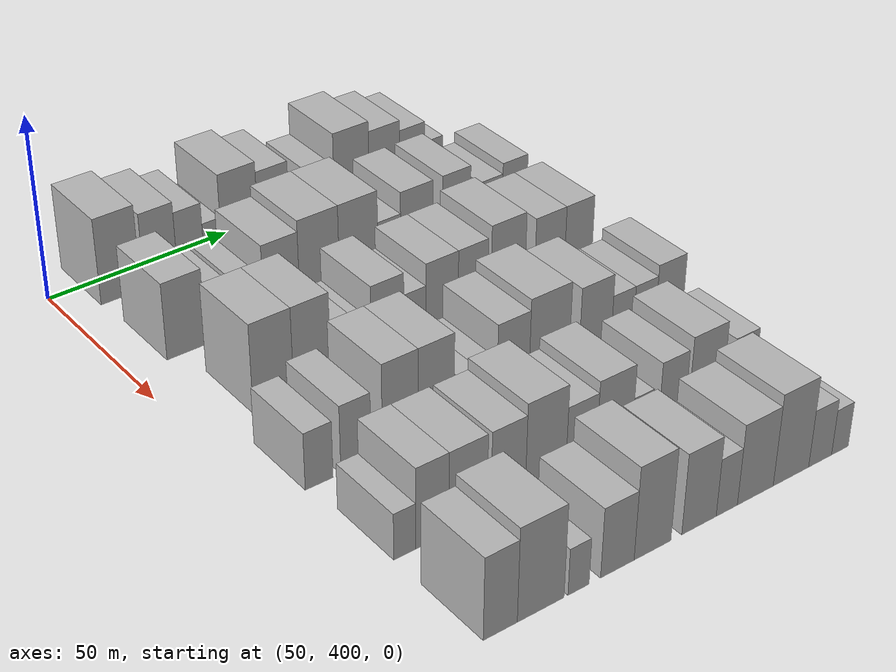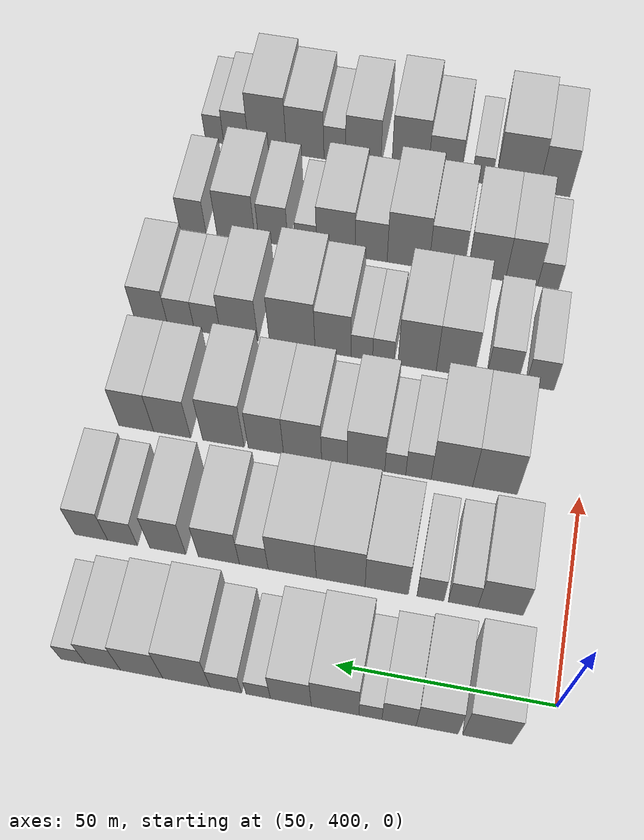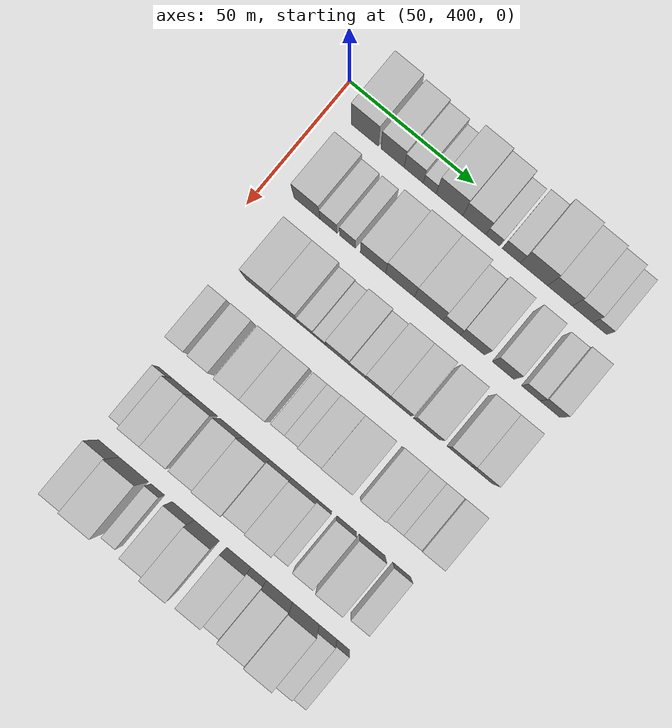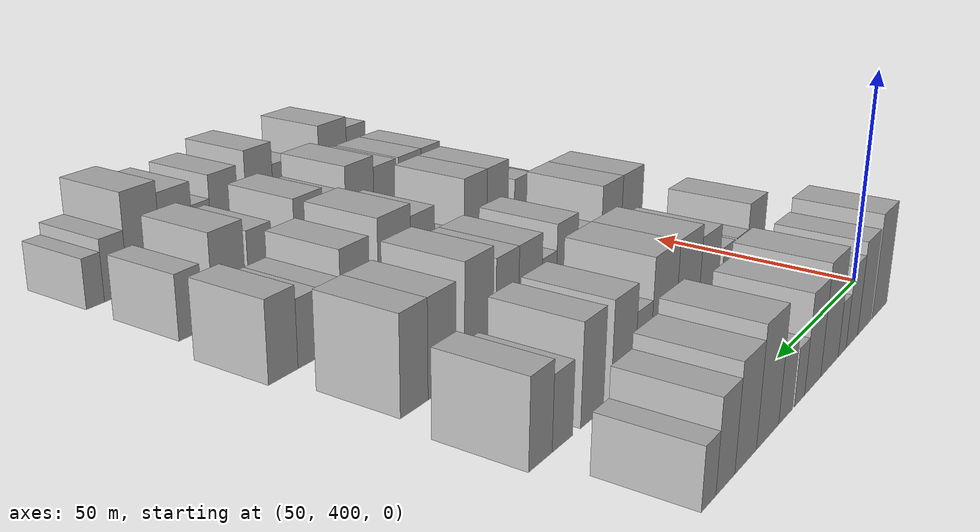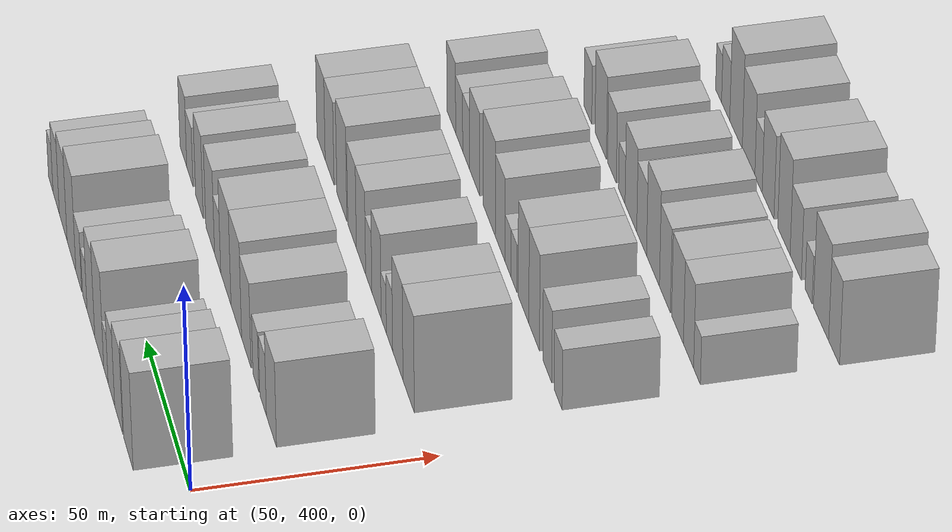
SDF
<sdf version="1.6">
 <world name="default">
  <model name="building_93">
   <static>1</static>
   <pose>50.0000 414.2516 0 0.000000 0.000000 0.000000</pose>
   <link name="link">
    <pose>0 0 12.00 0 0 0</pose>
    <collision name="collision"><geometry><box><size>20.0000 10.9364 24.0000</size></box></geometry></collision>
    <visual name="visual">
     <cast_shadows>0</cast_shadows>
     <geometry><box><size>20.0000 10.9364 24.0000</size></box></geometry>
     <material>
      <script>
       <uri>model://HANNAS_wall/materials/scripts</uri>
       <uri>model://HANNAS_wall/materials/textures</uri>
       <name>vrc/HANNAS_wall</name>
      </script>
     </material>
    </visual>
   </link>
  </model>
  <model name="building_94">
   <static>1</static>
   <pose>50.0000 425.4034 0 0.000000 0.000000 0.000000</pose>
   <link name="link">
    <pose>0 0 10.50 0 0 0</pose>
    <collision name="collision"><geometry><box><size>20.0000 9.3673 21.0000</size></box></geometry></collision>
    <visual name="visual">
     <cast_shadows>0</cast_shadows>
     <geometry><box><size>20.0000 9.3673 21.0000</size></box></geometry>
     <material>
      <script>
       <uri>model://HANNAS_wall/materials/scripts</uri>
       <uri>model://HANNAS_wall/materials/textures</uri>
       <name>vrc/HANNAS_wall</name>
      </script>
     </material>
    </visual>
   </link>
  </model>
  <model name="building_95">
   <static>1</static>
   <pose>50.0000 433.9190 0 0.000000 0.000000 0.000000</pose>
   <link name="link">
    <pose>0 0 9.00 0 0 0</pose>
    <collision name="collision"><geometry><box><size>20.0000 7.6639 18.0000</size></box></geometry></collision>
    <visual name="visual">
     <cast_shadows>0</cast_shadows>
     <geometry><box><size>20.0000 7.6639 18.0000</size></box></geometry>
     <material>
      <script>
       <uri>model://HANNAS_wall/materials/scripts</uri>
       <uri>model://HANNAS_wall/materials/textures</uri>
       <name>vrc/HANNAS_wall</name>
      </script>
     </material>
    </visual>
   </link>
  </model>
  <model name="building_96">
   <static>1</static>
   <pose>50.0000 440.3272 0 0.000000 0.000000 0.000000</pose>
   <link name="link">
    <pose>0 0 6.00 0 0 0</pose>
    <collision name="collision"><geometry><box><size>20.0000 5.1525 12.0000</size></box></geometry></collision>
    <visual name="visual">
     <cast_shadows>0</cast_shadows>
     <geometry><box><size>20.0000 5.1525 12.0000</size></box></geometry>
     <material>
      <script>
       <uri>model://HANNAS_wall/materials/scripts</uri>
       <uri>model://HANNAS_wall/materials/textures</uri>
       <name>vrc/HANNAS_wall</name>
      </script>
     </material>
    </visual>
   </link>
  </model>
  <model name="building_97">
   <static>1</static>
   <pose>50.0000 448.2680 0 0.000000 0.000000 0.000000</pose>
   <link name="link">
    <pose>0 0 12.00 0 0 0</pose>
    <collision name="collision"><geometry><box><size>20.0000 10.7291 24.0000</size></box></geometry></collision>
    <visual name="visual">
     <cast_shadows>0</cast_shadows>
     <geometry><box><size>20.0000 10.7291 24.0000</size></box></geometry>
     <material>
      <script>
       <uri>model://HANNAS_wall/materials/scripts</uri>
       <uri>model://HANNAS_wall/materials/textures</uri>
       <name>vrc/HANNAS_wall</name>
      </script>
     </material>
    </visual>
   </link>
  </model>
  <model name="building_98">
   <static>1</static>
   <pose>50.0000 458.2632 0 0.000000 0.000000 0.000000</pose>
   <link name="link">
    <pose>0 0 10.50 0 0 0</pose>
    <collision name="collision"><geometry><box><size>20.0000 9.2614 21.0000</size></box></geometry></collision>
    <visual name="visual">
     <cast_shadows>0</cast_shadows>
     <geometry><box><size>20.0000 9.2614 21.0000</size></box></geometry>
     <material>
      <script>
       <uri>model://HANNAS_wall/materials/scripts</uri>
       <uri>model://HANNAS_wall/materials/textures</uri>
       <name>vrc/HANNAS_wall</name>
      </script>
     </material>
    </visual>
   </link>
  </model>
  <model name="building_99">
   <static>1</static>
   <pose>50.0000 465.6730 0 0.000000 0.000000 0.000000</pose>
   <link name="link">
    <pose>0 0 6.00 0 0 0</pose>
    <collision name="collision"><geometry><box><size>20.0000 5.5582 12.0000</size></box></geometry></collision>
    <visual name="visual">
     <cast_shadows>0</cast_shadows>
     <geometry><box><size>20.0000 5.5582 12.0000</size></box></geometry>
     <material>
      <script>
       <uri>model://HANNAS_wall/materials/scripts</uri>
       <uri>model://HANNAS_wall/materials/textures</uri>
       <name>vrc/HANNAS_wall</name>
      </script>
     </material>
    </visual>
   </link>
  </model>
  <model name="building_100">
   <static>1</static>
   <pose>50.0000 473.0688 0 0.000000 0.000000 0.000000</pose>
   <link name="link">
    <pose>0 0 7.50 0 0 0</pose>
    <collision name="collision"><geometry><box><size>20.0000 7.2334 15.0000</size></box></geometry></collision>
    <visual name="visual">
     <cast_shadows>0</cast_shadows>
     <geometry><box><size>20.0000 7.2334 15.0000</size></box></geometry>
     <material>
      <script>
       <uri>model://HANNAS_wall/materials/scripts</uri>
       <uri>model://HANNAS_wall/materials/textures</uri>
       <name>vrc/HANNAS_wall</name>
      </script>
     </material>
    </visual>
   </link>
  </model>
  <model name="building_101">
   <static>1</static>
   <pose>50.0000 482.1366 0 0.000000 0.000000 0.000000</pose>
   <link name="link">
    <pose>0 0 12.00 0 0 0</pose>
    <collision name="collision"><geometry><box><size>20.0000 10.9023 24.0000</size></box></geometry></collision>
    <visual name="visual">
     <cast_shadows>0</cast_shadows>
     <geometry><box><size>20.0000 10.9023 24.0000</size></box></geometry>
     <material>
      <script>
       <uri>model://HANNAS_wall/materials/scripts</uri>
       <uri>model://HANNAS_wall/materials/textures</uri>
       <name>vrc/HANNAS_wall</name>
      </script>
     </material>
    </visual>
   </link>
  </model>
  <model name="building_102">
   <static>1</static>
   <pose>50.0000 492.4857 0 0.000000 0.000000 0.000000</pose>
   <link name="link">
    <pose>0 0 10.50 0 0 0</pose>
    <collision name="collision"><geometry><box><size>20.0000 9.7958 21.0000</size></box></geometry></collision>
    <visual name="visual">
     <cast_shadows>0</cast_shadows>
     <geometry><box><size>20.0000 9.7958 21.0000</size></box></geometry>
     <material>
      <script>
       <uri>model://HANNAS_wall/materials/scripts</uri>
       <uri>model://HANNAS_wall/materials/textures</uri>
       <name>vrc/HANNAS_wall</name>
      </script>
     </material>
    </visual>
   </link>
  </model>
  <model name="building_103">
   <static>1</static>
   <pose>50.0000 501.4097 0 0.000000 0.000000 0.000000</pose>
   <link name="link">
    <pose>0 0 9.00 0 0 0</pose>
    <collision name="collision"><geometry><box><size>20.0000 8.0523 18.0000</size></box></geometry></collision>
    <visual name="visual">
     <cast_shadows>0</cast_shadows>
     <geometry><box><size>20.0000 8.0523 18.0000</size></box></geometry>
     <material>
      <script>
       <uri>model://HANNAS_wall/materials/scripts</uri>
       <uri>model://HANNAS_wall/materials/textures</uri>
       <name>vrc/HANNAS_wall</name>
      </script>
     </material>
    </visual>
   </link>
  </model>
  <model name="building_104">
   <static>1</static>
   <pose>50.0000 508.3686 0 0.000000 0.000000 0.000000</pose>
   <link name="link">
    <pose>0 0 6.00 0 0 0</pose>
    <collision name="collision"><geometry><box><size>20.0000 5.8654 12.0000</size></box></geometry></collision>
    <visual name="visual">
     <cast_shadows>0</cast_shadows>
     <geometry><box><size>20.0000 5.8654 12.0000</size></box></geometry>
     <material>
      <script>
       <uri>model://HANNAS_wall/materials/scripts</uri>
       <uri>model://HANNAS_wall/materials/textures</uri>
       <name>vrc/HANNAS_wall</name>
      </script>
     </material>
    </visual>
   </link>
  </model>
  <model name="building_212">
   <static>1</static>
   <pose>79.0000 415.1265 0 0.000000 0.000000 0.000000</pose>
   <link name="link">
    <pose>0 0 10.50 0 0 0</pose>
    <collision name="collision"><geometry><box><size>20.0000 10.4873 21.0000</size></box></geometry></collision>
    <visual name="visual">
     <cast_shadows>0</cast_shadows>
     <geometry><box><size>20.0000 10.4873 21.0000</size></box></geometry>
     <material>
      <script>
       <uri>model://HANNAS_wall/materials/scripts</uri>
       <uri>model://HANNAS_wall/materials/textures</uri>
       <name>vrc/HANNAS_wall</name>
      </script>
     </material>
    </visual>
   </link>
  </model>
  <model name="building_213">
   <static>1</static>
   <pose>79.0000 423.7990 0 0.000000 0.000000 0.000000</pose>
   <link name="link">
    <pose>0 0 7.50 0 0 0</pose>
    <collision name="collision"><geometry><box><size>20.0000 6.8576 15.0000</size></box></geometry></collision>
    <visual name="visual">
     <cast_shadows>0</cast_shadows>
     <geometry><box><size>20.0000 6.8576 15.0000</size></box></geometry>
     <material>
      <script>
       <uri>model://HANNAS_wall/materials/scripts</uri>
       <uri>model://HANNAS_wall/materials/textures</uri>
       <name>vrc/HANNAS_wall</name>
      </script>
     </material>
    </visual>
   </link>
  </model>
  <model name="building_214">
   <static>1</static>
   <pose>79.0000 431.3842 0 0.000000 0.000000 0.000000</pose>
   <link name="link">
    <pose>0 0 7.50 0 0 0</pose>
    <collision name="collision"><geometry><box><size>20.0000 6.3128 15.0000</size></box></geometry></collision>
    <visual name="visual">
     <cast_shadows>0</cast_shadows>
     <geometry><box><size>20.0000 6.3128 15.0000</size></box></geometry>
     <material>
      <script>
       <uri>model://HANNAS_wall/materials/scripts</uri>
       <uri>model://HANNAS_wall/materials/textures</uri>
       <name>vrc/HANNAS_wall</name>
      </script>
     </material>
    </visual>
   </link>
  </model>
  <model name="building_215">
   <static>1</static>
   <pose>79.0000 441.6083 0 0.000000 0.000000 0.000000</pose>
   <link name="link">
    <pose>0 0 10.50 0 0 0</pose>
    <collision name="collision"><geometry><box><size>20.0000 10.1354 21.0000</size></box></geometry></collision>
    <visual name="visual">
     <cast_shadows>0</cast_shadows>
     <geometry><box><size>20.0000 10.1354 21.0000</size></box></geometry>
     <material>
      <script>
       <uri>model://HANNAS_wall/materials/scripts</uri>
       <uri>model://HANNAS_wall/materials/textures</uri>
       <name>vrc/HANNAS_wall</name>
      </script>
     </material>
    </visual>
   </link>
  </model>
  <model name="building_216">
   <static>1</static>
   <pose>79.0000 452.4378 0 0.000000 0.000000 0.000000</pose>
   <link name="link">
    <pose>0 0 12.00 0 0 0</pose>
    <collision name="collision"><geometry><box><size>20.0000 11.5237 24.0000</size></box></geometry></collision>
    <visual name="visual">
     <cast_shadows>0</cast_shadows>
     <geometry><box><size>20.0000 11.5237 24.0000</size></box></geometry>
     <material>
      <script>
       <uri>model://HANNAS_wall/materials/scripts</uri>
       <uri>model://HANNAS_wall/materials/textures</uri>
       <name>vrc/HANNAS_wall</name>
      </script>
     </material>
    </visual>
   </link>
  </model>
  <model name="building_217">
   <static>1</static>
   <pose>79.0000 463.9124 0 0.000000 0.000000 0.000000</pose>
   <link name="link">
    <pose>0 0 12.00 0 0 0</pose>
    <collision name="collision"><geometry><box><size>20.0000 11.4254 24.0000</size></box></geometry></collision>
    <visual name="visual">
     <cast_shadows>0</cast_shadows>
     <geometry><box><size>20.0000 11.4254 24.0000</size></box></geometry>
     <material>
      <script>
       <uri>model://HANNAS_wall/materials/scripts</uri>
       <uri>model://HANNAS_wall/materials/textures</uri>
       <name>vrc/HANNAS_wall</name>
      </script>
     </material>
    </visual>
   </link>
  </model>
  <model name="building_218">
   <static>1</static>
   <pose>79.0000 473.0520 0 0.000000 0.000000 0.000000</pose>
   <link name="link">
    <pose>0 0 7.50 0 0 0</pose>
    <collision name="collision"><geometry><box><size>20.0000 6.8539 15.0000</size></box></geometry></collision>
    <visual name="visual">
     <cast_shadows>0</cast_shadows>
     <geometry><box><size>20.0000 6.8539 15.0000</size></box></geometry>
     <material>
      <script>
       <uri>model://HANNAS_wall/materials/scripts</uri>
       <uri>model://HANNAS_wall/materials/textures</uri>
       <name>vrc/HANNAS_wall</name>
      </script>
     </material>
    </visual>
   </link>
  </model>
  <model name="building_219">
   <static>1</static>
   <pose>79.0000 481.3973 0 0.000000 0.000000 0.000000</pose>
   <link name="link">
    <pose>0 0 10.50 0 0 0</pose>
    <collision name="collision"><geometry><box><size>20.0000 9.8367 21.0000</size></box></geometry></collision>
    <visual name="visual">
     <cast_shadows>0</cast_shadows>
     <geometry><box><size>20.0000 9.8367 21.0000</size></box></geometry>
     <material>
      <script>
       <uri>model://HANNAS_wall/materials/scripts</uri>
       <uri>model://HANNAS_wall/materials/textures</uri>
       <name>vrc/HANNAS_wall</name>
      </script>
     </material>
    </visual>
   </link>
  </model>
  <model name="building_220">
   <static>1</static>
   <pose>79.0000 493.6692 0 0.000000 0.000000 0.000000</pose>
   <link name="link">
    <pose>0 0 10.50 0 0 0</pose>
    <collision name="collision"><geometry><box><size>20.0000 8.7072 21.0000</size></box></geometry></collision>
    <visual name="visual">
     <cast_shadows>0</cast_shadows>
     <geometry><box><size>20.0000 8.7072 21.0000</size></box></geometry>
     <material>
      <script>
       <uri>model://HANNAS_wall/materials/scripts</uri>
       <uri>model://HANNAS_wall/materials/textures</uri>
       <name>vrc/HANNAS_wall</name>
      </script>
     </material>
    </visual>
   </link>
  </model>
  <model name="building_221">
   <static>1</static>
   <pose>79.0000 504.6498 0 0.000000 0.000000 0.000000</pose>
   <link name="link">
    <pose>0 0 7.50 0 0 0</pose>
    <collision name="collision"><geometry><box><size>20.0000 7.2540 15.0000</size></box></geometry></collision>
    <visual name="visual">
     <cast_shadows>0</cast_shadows>
     <geometry><box><size>20.0000 7.2540 15.0000</size></box></geometry>
     <material>
      <script>
       <uri>model://HANNAS_wall/materials/scripts</uri>
       <uri>model://HANNAS_wall/materials/textures</uri>
       <name>vrc/HANNAS_wall</name>
      </script>
     </material>
    </visual>
   </link>
  </model>
  <model name="building_222">
   <static>1</static>
   <pose>79.0000 512.2654 0 0.000000 0.000000 0.000000</pose>
   <link name="link">
    <pose>0 0 9.00 0 0 0</pose>
    <collision name="collision"><geometry><box><size>20.0000 7.9772 18.0000</size></box></geometry></collision>
    <visual name="visual">
     <cast_shadows>0</cast_shadows>
     <geometry><box><size>20.0000 7.9772 18.0000</size></box></geometry>
     <material>
      <script>
       <uri>model://HANNAS_wall/materials/scripts</uri>
       <uri>model://HANNAS_wall/materials/textures</uri>
       <name>vrc/HANNAS_wall</name>
      </script>
     </material>
    </visual>
   </link>
  </model>
  <model name="building_333">
   <static>1</static>
   <pose>108.0000 420.2625 0 0.000000 0.000000 0.000000</pose>
   <link name="link">
    <pose>0 0 12.00 0 0 0</pose>
    <collision name="collision"><geometry><box><size>20.0000 10.8270 24.0000</size></box></geometry></collision>
    <visual name="visual">
     <cast_shadows>0</cast_shadows>
     <geometry><box><size>20.0000 10.8270 24.0000</size></box></geometry>
     <material>
      <script>
       <uri>model://HANNAS_wall/materials/scripts</uri>
       <uri>model://HANNAS_wall/materials/textures</uri>
       <name>vrc/HANNAS_wall</name>
      </script>
     </material>
    </visual>
   </link>
  </model>
  <model name="building_334">
   <static>1</static>
   <pose>108.0000 430.7032 0 0.000000 0.000000 0.000000</pose>
   <link name="link">
    <pose>0 0 12.00 0 0 0</pose>
    <collision name="collision"><geometry><box><size>20.0000 10.0544 24.0000</size></box></geometry></collision>
    <visual name="visual">
     <cast_shadows>0</cast_shadows>
     <geometry><box><size>20.0000 10.0544 24.0000</size></box></geometry>
     <material>
      <script>
       <uri>model://HANNAS_wall/materials/scripts</uri>
       <uri>model://HANNAS_wall/materials/textures</uri>
       <name>vrc/HANNAS_wall</name>
      </script>
     </material>
    </visual>
   </link>
  </model>
  <model name="building_335">
   <static>1</static>
   <pose>108.0000 438.8307 0 0.000000 0.000000 0.000000</pose>
   <link name="link">
    <pose>0 0 7.50 0 0 0</pose>
    <collision name="collision"><geometry><box><size>20.0000 6.2006 15.0000</size></box></geometry></collision>
    <visual name="visual">
     <cast_shadows>0</cast_shadows>
     <geometry><box><size>20.0000 6.2006 15.0000</size></box></geometry>
     <material>
      <script>
       <uri>model://HANNAS_wall/materials/scripts</uri>
       <uri>model://HANNAS_wall/materials/textures</uri>
       <name>vrc/HANNAS_wall</name>
      </script>
     </material>
    </visual>
   </link>
  </model>
  <model name="building_336">
   <static>1</static>
   <pose>108.0000 444.4885 0 0.000000 0.000000 0.000000</pose>
   <link name="link">
    <pose>0 0 6.00 0 0 0</pose>
    <collision name="collision"><geometry><box><size>20.0000 5.1149 12.0000</size></box></geometry></collision>
    <visual name="visual">
     <cast_shadows>0</cast_shadows>
     <geometry><box><size>20.0000 5.1149 12.0000</size></box></geometry>
     <material>
      <script>
       <uri>model://HANNAS_wall/materials/scripts</uri>
       <uri>model://HANNAS_wall/materials/textures</uri>
       <name>vrc/HANNAS_wall</name>
      </script>
     </material>
    </visual>
   </link>
  </model>
  <model name="building_337">
   <static>1</static>
   <pose>108.0000 451.6669 0 0.000000 0.000000 0.000000</pose>
   <link name="link">
    <pose>0 0 10.50 0 0 0</pose>
    <collision name="collision"><geometry><box><size>20.0000 9.2420 21.0000</size></box></geometry></collision>
    <visual name="visual">
     <cast_shadows>0</cast_shadows>
     <geometry><box><size>20.0000 9.2420 21.0000</size></box></geometry>
     <material>
      <script>
       <uri>model://HANNAS_wall/materials/scripts</uri>
       <uri>model://HANNAS_wall/materials/textures</uri>
       <name>vrc/HANNAS_wall</name>
      </script>
     </material>
    </visual>
   </link>
  </model>
  <model name="building_338">
   <static>1</static>
   <pose>108.0000 459.4291 0 0.000000 0.000000 0.000000</pose>
   <link name="link">
    <pose>0 0 7.50 0 0 0</pose>
    <collision name="collision"><geometry><box><size>20.0000 6.2824 15.0000</size></box></geometry></collision>
    <visual name="visual">
     <cast_shadows>0</cast_shadows>
     <geometry><box><size>20.0000 6.2824 15.0000</size></box></geometry>
     <material>
      <script>
       <uri>model://HANNAS_wall/materials/scripts</uri>
       <uri>model://HANNAS_wall/materials/textures</uri>
       <name>vrc/HANNAS_wall</name>
      </script>
     </material>
    </visual>
   </link>
  </model>
  <model name="building_339">
   <static>1</static>
   <pose>108.0000 467.2860 0 0.000000 0.000000 0.000000</pose>
   <link name="link">
    <pose>0 0 10.50 0 0 0</pose>
    <collision name="collision"><geometry><box><size>20.0000 9.4314 21.0000</size></box></geometry></collision>
    <visual name="visual">
     <cast_shadows>0</cast_shadows>
     <geometry><box><size>20.0000 9.4314 21.0000</size></box></geometry>
     <material>
      <script>
       <uri>model://HANNAS_wall/materials/scripts</uri>
       <uri>model://HANNAS_wall/materials/textures</uri>
       <name>vrc/HANNAS_wall</name>
      </script>
     </material>
    </visual>
   </link>
  </model>
  <model name="building_340">
   <static>1</static>
   <pose>108.0000 476.3887 0 0.000000 0.000000 0.000000</pose>
   <link name="link">
    <pose>0 0 10.50 0 0 0</pose>
    <collision name="collision"><geometry><box><size>20.0000 8.7740 21.0000</size></box></geometry></collision>
    <visual name="visual">
     <cast_shadows>0</cast_shadows>
     <geometry><box><size>20.0000 8.7740 21.0000</size></box></geometry>
     <material>
      <script>
       <uri>model://HANNAS_wall/materials/scripts</uri>
       <uri>model://HANNAS_wall/materials/textures</uri>
       <name>vrc/HANNAS_wall</name>
      </script>
     </material>
    </visual>
   </link>
  </model>
  <model name="building_341">
   <static>1</static>
   <pose>108.0000 486.9662 0 0.000000 0.000000 0.000000</pose>
   <link name="link">
    <pose>0 0 12.00 0 0 0</pose>
    <collision name="collision"><geometry><box><size>20.0000 10.3810 24.0000</size></box></geometry></collision>
    <visual name="visual">
     <cast_shadows>0</cast_shadows>
     <geometry><box><size>20.0000 10.3810 24.0000</size></box></geometry>
     <material>
      <script>
       <uri>model://HANNAS_wall/materials/scripts</uri>
       <uri>model://HANNAS_wall/materials/textures</uri>
       <name>vrc/HANNAS_wall</name>
      </script>
     </material>
    </visual>
   </link>
  </model>
  <model name="building_342">
   <static>1</static>
   <pose>108.0000 499.8358 0 0.000000 0.000000 0.000000</pose>
   <link name="link">
    <pose>0 0 10.50 0 0 0</pose>
    <collision name="collision"><geometry><box><size>20.0000 9.3582 21.0000</size></box></geometry></collision>
    <visual name="visual">
     <cast_shadows>0</cast_shadows>
     <geometry><box><size>20.0000 9.3582 21.0000</size></box></geometry>
     <material>
      <script>
       <uri>model://HANNAS_wall/materials/scripts</uri>
       <uri>model://HANNAS_wall/materials/textures</uri>
       <name>vrc/HANNAS_wall</name>
      </script>
     </material>
    </visual>
   </link>
  </model>
  <model name="building_343">
   <static>1</static>
   <pose>108.0000 508.9016 0 0.000000 0.000000 0.000000</pose>
   <link name="link">
    <pose>0 0 10.50 0 0 0</pose>
    <collision name="collision"><geometry><box><size>20.0000 8.7733 21.0000</size></box></geometry></collision>
    <visual name="visual">
     <cast_shadows>0</cast_shadows>
     <geometry><box><size>20.0000 8.7733 21.0000</size></box></geometry>
     <material>
      <script>
       <uri>model://HANNAS_wall/materials/scripts</uri>
       <uri>model://HANNAS_wall/materials/textures</uri>
       <name>vrc/HANNAS_wall</name>
      </script>
     </material>
    </visual>
   </link>
  </model>
  <model name="building_450">
   <static>1</static>
   <pose>137.0000 412.8264 0 0.000000 0.000000 0.000000</pose>
   <link name="link">
    <pose>0 0 7.50 0 0 0</pose>
    <collision name="collision"><geometry><box><size>20.0000 7.1175 15.0000</size></box></geometry></collision>
    <visual name="visual">
     <cast_shadows>0</cast_shadows>
     <geometry><box><size>20.0000 7.1175 15.0000</size></box></geometry>
     <material>
      <script>
       <uri>model://HANNAS_wall/materials/scripts</uri>
       <uri>model://HANNAS_wall/materials/textures</uri>
       <name>vrc/HANNAS_wall</name>
      </script>
     </material>
    </visual>
   </link>
  </model>
  <model name="building_451">
   <static>1</static>
   <pose>137.0000 422.3497 0 0.000000 0.000000 0.000000</pose>
   <link name="link">
    <pose>0 0 9.00 0 0 0</pose>
    <collision name="collision"><geometry><box><size>20.0000 7.9292 18.0000</size></box></geometry></collision>
    <visual name="visual">
     <cast_shadows>0</cast_shadows>
     <geometry><box><size>20.0000 7.9292 18.0000</size></box></geometry>
     <material>
      <script>
       <uri>model://HANNAS_wall/materials/scripts</uri>
       <uri>model://HANNAS_wall/materials/textures</uri>
       <name>vrc/HANNAS_wall</name>
      </script>
     </material>
    </visual>
   </link>
  </model>
  <model name="building_452">
   <static>1</static>
   <pose>137.0000 434.1316 0 0.000000 0.000000 0.000000</pose>
   <link name="link">
    <pose>0 0 12.00 0 0 0</pose>
    <collision name="collision"><geometry><box><size>20.0000 9.6346 24.0000</size></box></geometry></collision>
    <visual name="visual">
     <cast_shadows>0</cast_shadows>
     <geometry><box><size>20.0000 9.6346 24.0000</size></box></geometry>
     <material>
      <script>
       <uri>model://HANNAS_wall/materials/scripts</uri>
       <uri>model://HANNAS_wall/materials/textures</uri>
       <name>vrc/HANNAS_wall</name>
      </script>
     </material>
    </visual>
   </link>
  </model>
  <model name="building_453">
   <static>1</static>
   <pose>137.0000 443.8209 0 0.000000 0.000000 0.000000</pose>
   <link name="link">
    <pose>0 0 12.00 0 0 0</pose>
    <collision name="collision"><geometry><box><size>20.0000 9.7439 24.0000</size></box></geometry></collision>
    <visual name="visual">
     <cast_shadows>0</cast_shadows>
     <geometry><box><size>20.0000 9.7439 24.0000</size></box></geometry>
     <material>
      <script>
       <uri>model://HANNAS_wall/materials/scripts</uri>
       <uri>model://HANNAS_wall/materials/textures</uri>
       <name>vrc/HANNAS_wall</name>
      </script>
     </material>
    </visual>
   </link>
  </model>
  <model name="building_454">
   <static>1</static>
   <pose>137.0000 452.4248 0 0.000000 0.000000 0.000000</pose>
   <link name="link">
    <pose>0 0 6.00 0 0 0</pose>
    <collision name="collision"><geometry><box><size>20.0000 5.4640 12.0000</size></box></geometry></collision>
    <visual name="visual">
     <cast_shadows>0</cast_shadows>
     <geometry><box><size>20.0000 5.4640 12.0000</size></box></geometry>
     <material>
      <script>
       <uri>model://HANNAS_wall/materials/scripts</uri>
       <uri>model://HANNAS_wall/materials/textures</uri>
       <name>vrc/HANNAS_wall</name>
      </script>
     </material>
    </visual>
   </link>
  </model>
  <model name="building_455">
   <static>1</static>
   <pose>137.0000 457.9187 0 0.000000 0.000000 0.000000</pose>
   <link name="link">
    <pose>0 0 6.00 0 0 0</pose>
    <collision name="collision"><geometry><box><size>20.0000 5.5236 12.0000</size></box></geometry></collision>
    <visual name="visual">
     <cast_shadows>0</cast_shadows>
     <geometry><box><size>20.0000 5.5236 12.0000</size></box></geometry>
     <material>
      <script>
       <uri>model://HANNAS_wall/materials/scripts</uri>
       <uri>model://HANNAS_wall/materials/textures</uri>
       <name>vrc/HANNAS_wall</name>
      </script>
     </material>
    </visual>
   </link>
  </model>
  <model name="building_456">
   <static>1</static>
   <pose>137.0000 465.2865 0 0.000000 0.000000 0.000000</pose>
   <link name="link">
    <pose>0 0 10.50 0 0 0</pose>
    <collision name="collision"><geometry><box><size>20.0000 9.2121 21.0000</size></box></geometry></collision>
    <visual name="visual">
     <cast_shadows>0</cast_shadows>
     <geometry><box><size>20.0000 9.2121 21.0000</size></box></geometry>
     <material>
      <script>
       <uri>model://HANNAS_wall/materials/scripts</uri>
       <uri>model://HANNAS_wall/materials/textures</uri>
       <name>vrc/HANNAS_wall</name>
      </script>
     </material>
    </visual>
   </link>
  </model>
  <model name="building_457">
   <static>1</static>
   <pose>137.0000 475.7634 0 0.000000 0.000000 0.000000</pose>
   <link name="link">
    <pose>0 0 12.00 0 0 0</pose>
    <collision name="collision"><geometry><box><size>20.0000 11.7416 24.0000</size></box></geometry></collision>
    <visual name="visual">
     <cast_shadows>0</cast_shadows>
     <geometry><box><size>20.0000 11.7416 24.0000</size></box></geometry>
     <material>
      <script>
       <uri>model://HANNAS_wall/materials/scripts</uri>
       <uri>model://HANNAS_wall/materials/textures</uri>
       <name>vrc/HANNAS_wall</name>
      </script>
     </material>
    </visual>
   </link>
  </model>
  <model name="building_458">
   <static>1</static>
   <pose>137.0000 489.4765 0 0.000000 0.000000 0.000000</pose>
   <link name="link">
    <pose>0 0 10.50 0 0 0</pose>
    <collision name="collision"><geometry><box><size>20.0000 9.6846 21.0000</size></box></geometry></collision>
    <visual name="visual">
     <cast_shadows>0</cast_shadows>
     <geometry><box><size>20.0000 9.6846 21.0000</size></box></geometry>
     <material>
      <script>
       <uri>model://HANNAS_wall/materials/scripts</uri>
       <uri>model://HANNAS_wall/materials/textures</uri>
       <name>vrc/HANNAS_wall</name>
      </script>
     </material>
    </visual>
   </link>
  </model>
  <model name="building_459">
   <static>1</static>
   <pose>137.0000 497.7407 0 0.000000 0.000000 0.000000</pose>
   <link name="link">
    <pose>0 0 7.50 0 0 0</pose>
    <collision name="collision"><geometry><box><size>20.0000 6.8438 15.0000</size></box></geometry></collision>
    <visual name="visual">
     <cast_shadows>0</cast_shadows>
     <geometry><box><size>20.0000 6.8438 15.0000</size></box></geometry>
     <material>
      <script>
       <uri>model://HANNAS_wall/materials/scripts</uri>
       <uri>model://HANNAS_wall/materials/textures</uri>
       <name>vrc/HANNAS_wall</name>
      </script>
     </material>
    </visual>
   </link>
  </model>
  <model name="building_460">
   <static>1</static>
   <pose>137.0000 504.6346 0 0.000000 0.000000 0.000000</pose>
   <link name="link">
    <pose>0 0 7.50 0 0 0</pose>
    <collision name="collision"><geometry><box><size>20.0000 6.9439 15.0000</size></box></geometry></collision>
    <visual name="visual">
     <cast_shadows>0</cast_shadows>
     <geometry><box><size>20.0000 6.9439 15.0000</size></box></geometry>
     <material>
      <script>
       <uri>model://HANNAS_wall/materials/scripts</uri>
       <uri>model://HANNAS_wall/materials/textures</uri>
       <name>vrc/HANNAS_wall</name>
      </script>
     </material>
    </visual>
   </link>
  </model>
  <model name="building_461">
   <static>1</static>
   <pose>137.0000 512.4510 0 0.000000 0.000000 0.000000</pose>
   <link name="link">
    <pose>0 0 9.00 0 0 0</pose>
    <collision name="collision"><geometry><box><size>20.0000 8.6889 18.0000</size></box></geometry></collision>
    <visual name="visual">
     <cast_shadows>0</cast_shadows>
     <geometry><box><size>20.0000 8.6889 18.0000</size></box></geometry>
     <material>
      <script>
       <uri>model://HANNAS_wall/materials/scripts</uri>
       <uri>model://HANNAS_wall/materials/textures</uri>
       <name>vrc/HANNAS_wall</name>
      </script>
     </material>
    </visual>
   </link>
  </model>
  <model name="building_567">
   <static>1</static>
   <pose>166.0000 414.0593 0 0.000000 0.000000 0.000000</pose>
   <link name="link">
    <pose>0 0 6.00 0 0 0</pose>
    <collision name="collision"><geometry><box><size>20.0000 5.5364 12.0000</size></box></geometry></collision>
    <visual name="visual">
     <cast_shadows>0</cast_shadows>
     <geometry><box><size>20.0000 5.5364 12.0000</size></box></geometry>
     <material>
      <script>
       <uri>model://HANNAS_wall/materials/scripts</uri>
       <uri>model://HANNAS_wall/materials/textures</uri>
       <name>vrc/HANNAS_wall</name>
      </script>
     </material>
    </visual>
   </link>
  </model>
  <model name="building_568">
   <static>1</static>
   <pose>166.0000 421.0393 0 0.000000 0.000000 0.000000</pose>
   <link name="link">
    <pose>0 0 10.50 0 0 0</pose>
    <collision name="collision"><geometry><box><size>20.0000 8.4236 21.0000</size></box></geometry></collision>
    <visual name="visual">
     <cast_shadows>0</cast_shadows>
     <geometry><box><size>20.0000 8.4236 21.0000</size></box></geometry>
     <material>
      <script>
       <uri>model://HANNAS_wall/materials/scripts</uri>
       <uri>model://HANNAS_wall/materials/textures</uri>
       <name>vrc/HANNAS_wall</name>
      </script>
     </material>
    </visual>
   </link>
  </model>
  <model name="building_569">
   <static>1</static>
   <pose>166.0000 430.2105 0 0.000000 0.000000 0.000000</pose>
   <link name="link">
    <pose>0 0 10.50 0 0 0</pose>
    <collision name="collision"><geometry><box><size>20.0000 9.9188 21.0000</size></box></geometry></collision>
    <visual name="visual">
     <cast_shadows>0</cast_shadows>
     <geometry><box><size>20.0000 9.9188 21.0000</size></box></geometry>
     <material>
      <script>
       <uri>model://HANNAS_wall/materials/scripts</uri>
       <uri>model://HANNAS_wall/materials/textures</uri>
       <name>vrc/HANNAS_wall</name>
      </script>
     </material>
    </visual>
   </link>
  </model>
  <model name="building_570">
   <static>1</static>
   <pose>166.0000 440.7620 0 0.000000 0.000000 0.000000</pose>
   <link name="link">
    <pose>0 0 10.50 0 0 0</pose>
    <collision name="collision"><geometry><box><size>20.0000 9.1843 21.0000</size></box></geometry></collision>
    <visual name="visual">
     <cast_shadows>0</cast_shadows>
     <geometry><box><size>20.0000 9.1843 21.0000</size></box></geometry>
     <material>
      <script>
       <uri>model://HANNAS_wall/materials/scripts</uri>
       <uri>model://HANNAS_wall/materials/textures</uri>
       <name>vrc/HANNAS_wall</name>
      </script>
     </material>
    </visual>
   </link>
  </model>
  <model name="building_571">
   <static>1</static>
   <pose>166.0000 450.8738 0 0.000000 0.000000 0.000000</pose>
   <link name="link">
    <pose>0 0 12.00 0 0 0</pose>
    <collision name="collision"><geometry><box><size>20.0000 11.0393 24.0000</size></box></geometry></collision>
    <visual name="visual">
     <cast_shadows>0</cast_shadows>
     <geometry><box><size>20.0000 11.0393 24.0000</size></box></geometry>
     <material>
      <script>
       <uri>model://HANNAS_wall/materials/scripts</uri>
       <uri>model://HANNAS_wall/materials/textures</uri>
       <name>vrc/HANNAS_wall</name>
      </script>
     </material>
    </visual>
   </link>
  </model>
  <model name="building_572">
   <static>1</static>
   <pose>166.0000 460.6480 0 0.000000 0.000000 0.000000</pose>
   <link name="link">
    <pose>0 0 9.00 0 0 0</pose>
    <collision name="collision"><geometry><box><size>20.0000 8.5091 18.0000</size></box></geometry></collision>
    <visual name="visual">
     <cast_shadows>0</cast_shadows>
     <geometry><box><size>20.0000 8.5091 18.0000</size></box></geometry>
     <material>
      <script>
       <uri>model://HANNAS_wall/materials/scripts</uri>
       <uri>model://HANNAS_wall/materials/textures</uri>
       <name>vrc/HANNAS_wall</name>
      </script>
     </material>
    </visual>
   </link>
  </model>
  <model name="building_573">
   <static>1</static>
   <pose>166.0000 470.0152 0 0.000000 0.000000 0.000000</pose>
   <link name="link">
    <pose>0 0 10.50 0 0 0</pose>
    <collision name="collision"><geometry><box><size>20.0000 10.2253 21.0000</size></box></geometry></collision>
    <visual name="visual">
     <cast_shadows>0</cast_shadows>
     <geometry><box><size>20.0000 10.2253 21.0000</size></box></geometry>
     <material>
      <script>
       <uri>model://HANNAS_wall/materials/scripts</uri>
       <uri>model://HANNAS_wall/materials/textures</uri>
       <name>vrc/HANNAS_wall</name>
      </script>
     </material>
    </visual>
   </link>
  </model>
  <model name="building_574">
   <static>1</static>
   <pose>166.0000 477.9815 0 0.000000 0.000000 0.000000</pose>
   <link name="link">
    <pose>0 0 6.00 0 0 0</pose>
    <collision name="collision"><geometry><box><size>20.0000 5.7071 12.0000</size></box></geometry></collision>
    <visual name="visual">
     <cast_shadows>0</cast_shadows>
     <geometry><box><size>20.0000 5.7071 12.0000</size></box></geometry>
     <material>
      <script>
       <uri>model://HANNAS_wall/materials/scripts</uri>
       <uri>model://HANNAS_wall/materials/textures</uri>
       <name>vrc/HANNAS_wall</name>
      </script>
     </material>
    </visual>
   </link>
  </model>
  <model name="building_575">
   <static>1</static>
   <pose>166.0000 486.7669 0 0.000000 0.000000 0.000000</pose>
   <link name="link">
    <pose>0 0 9.00 0 0 0</pose>
    <collision name="collision"><geometry><box><size>20.0000 7.8638 18.0000</size></box></geometry></collision>
    <visual name="visual">
     <cast_shadows>0</cast_shadows>
     <geometry><box><size>20.0000 7.8638 18.0000</size></box></geometry>
     <material>
      <script>
       <uri>model://HANNAS_wall/materials/scripts</uri>
       <uri>model://HANNAS_wall/materials/textures</uri>
       <name>vrc/HANNAS_wall</name>
      </script>
     </material>
    </visual>
   </link>
  </model>
  <model name="building_576">
   <static>1</static>
   <pose>166.0000 496.8653 0 0.000000 0.000000 0.000000</pose>
   <link name="link">
    <pose>0 0 10.50 0 0 0</pose>
    <collision name="collision"><geometry><box><size>20.0000 10.3330 21.0000</size></box></geometry></collision>
    <visual name="visual">
     <cast_shadows>0</cast_shadows>
     <geometry><box><size>20.0000 10.3330 21.0000</size></box></geometry>
     <material>
      <script>
       <uri>model://HANNAS_wall/materials/scripts</uri>
       <uri>model://HANNAS_wall/materials/textures</uri>
       <name>vrc/HANNAS_wall</name>
      </script>
     </material>
    </visual>
   </link>
  </model>
  <model name="building_577">
   <static>1</static>
   <pose>166.0000 508.6165 0 0.000000 0.000000 0.000000</pose>
   <link name="link">
    <pose>0 0 7.50 0 0 0</pose>
    <collision name="collision"><geometry><box><size>20.0000 7.1693 15.0000</size></box></geometry></collision>
    <visual name="visual">
     <cast_shadows>0</cast_shadows>
     <geometry><box><size>20.0000 7.1693 15.0000</size></box></geometry>
     <material>
      <script>
       <uri>model://HANNAS_wall/materials/scripts</uri>
       <uri>model://HANNAS_wall/materials/textures</uri>
       <name>vrc/HANNAS_wall</name>
      </script>
     </material>
    </visual>
   </link>
  </model>
  <model name="building_670">
   <static>1</static>
   <pose>195.0000 415.6813 0 0.000000 0.000000 0.000000</pose>
   <link name="link">
    <pose>0 0 10.50 0 0 0</pose>
    <collision name="collision"><geometry><box><size>20.0000 8.4067 21.0000</size></box></geometry></collision>
    <visual name="visual">
     <cast_shadows>0</cast_shadows>
     <geometry><box><size>20.0000 8.4067 21.0000</size></box></geometry>
     <material>
      <script>
       <uri>model://HANNAS_wall/materials/scripts</uri>
       <uri>model://HANNAS_wall/materials/textures</uri>
       <name>vrc/HANNAS_wall</name>
      </script>
     </material>
    </visual>
   </link>
  </model>
  <model name="building_671">
   <static>1</static>
   <pose>195.0000 425.7891 0 0.000000 0.000000 0.000000</pose>
   <link name="link">
    <pose>0 0 12.00 0 0 0</pose>
    <collision name="collision"><geometry><box><size>20.0000 11.8088 24.0000</size></box></geometry></collision>
    <visual name="visual">
     <cast_shadows>0</cast_shadows>
     <geometry><box><size>20.0000 11.8088 24.0000</size></box></geometry>
     <material>
      <script>
       <uri>model://HANNAS_wall/materials/scripts</uri>
       <uri>model://HANNAS_wall/materials/textures</uri>
       <name>vrc/HANNAS_wall</name>
      </script>
     </material>
    </visual>
   </link>
  </model>
  <model name="building_672">
   <static>1</static>
   <pose>195.0000 435.4334 0 0.000000 0.000000 0.000000</pose>
   <link name="link">
    <pose>0 0 6.00 0 0 0</pose>
    <collision name="collision"><geometry><box><size>20.0000 5.4798 12.0000</size></box></geometry></collision>
    <visual name="visual">
     <cast_shadows>0</cast_shadows>
     <geometry><box><size>20.0000 5.4798 12.0000</size></box></geometry>
     <material>
      <script>
       <uri>model://HANNAS_wall/materials/scripts</uri>
       <uri>model://HANNAS_wall/materials/textures</uri>
       <name>vrc/HANNAS_wall</name>
      </script>
     </material>
    </visual>
   </link>
  </model>
  <model name="building_673">
   <static>1</static>
   <pose>195.0000 445.6348 0 0.000000 0.000000 0.000000</pose>
   <link name="link">
    <pose>0 0 9.00 0 0 0</pose>
    <collision name="collision"><geometry><box><size>20.0000 8.9230 18.0000</size></box></geometry></collision>
    <visual name="visual">
     <cast_shadows>0</cast_shadows>
     <geometry><box><size>20.0000 8.9230 18.0000</size></box></geometry>
     <material>
      <script>
       <uri>model://HANNAS_wall/materials/scripts</uri>
       <uri>model://HANNAS_wall/materials/textures</uri>
       <name>vrc/HANNAS_wall</name>
      </script>
     </material>
    </visual>
   </link>
  </model>
  <model name="building_674">
   <static>1</static>
   <pose>195.0000 455.0914 0 0.000000 0.000000 0.000000</pose>
   <link name="link">
    <pose>0 0 12.00 0 0 0</pose>
    <collision name="collision"><geometry><box><size>20.0000 9.9901 24.0000</size></box></geometry></collision>
    <visual name="visual">
     <cast_shadows>0</cast_shadows>
     <geometry><box><size>20.0000 9.9901 24.0000</size></box></geometry>
     <material>
      <script>
       <uri>model://HANNAS_wall/materials/scripts</uri>
       <uri>model://HANNAS_wall/materials/textures</uri>
       <name>vrc/HANNAS_wall</name>
      </script>
     </material>
    </visual>
   </link>
  </model>
  <model name="building_675">
   <static>1</static>
   <pose>195.0000 467.9167 0 0.000000 0.000000 0.000000</pose>
   <link name="link">
    <pose>0 0 10.50 0 0 0</pose>
    <collision name="collision"><geometry><box><size>20.0000 9.6604 21.0000</size></box></geometry></collision>
    <visual name="visual">
     <cast_shadows>0</cast_shadows>
     <geometry><box><size>20.0000 9.6604 21.0000</size></box></geometry>
     <material>
      <script>
       <uri>model://HANNAS_wall/materials/scripts</uri>
       <uri>model://HANNAS_wall/materials/textures</uri>
       <name>vrc/HANNAS_wall</name>
      </script>
     </material>
    </visual>
   </link>
  </model>
  <model name="building_676">
   <static>1</static>
   <pose>195.0000 475.7780 0 0.000000 0.000000 0.000000</pose>
   <link name="link">
    <pose>0 0 7.50 0 0 0</pose>
    <collision name="collision"><geometry><box><size>20.0000 6.0623 15.0000</size></box></geometry></collision>
    <visual name="visual">
     <cast_shadows>0</cast_shadows>
     <geometry><box><size>20.0000 6.0623 15.0000</size></box></geometry>
     <material>
      <script>
       <uri>model://HANNAS_wall/materials/scripts</uri>
       <uri>model://HANNAS_wall/materials/textures</uri>
       <name>vrc/HANNAS_wall</name>
      </script>
     </material>
    </visual>
   </link>
  </model>
  <model name="building_677">
   <static>1</static>
   <pose>195.0000 484.0322 0 0.000000 0.000000 0.000000</pose>
   <link name="link">
    <pose>0 0 10.50 0 0 0</pose>
    <collision name="collision"><geometry><box><size>20.0000 10.4460 21.0000</size></box></geometry></collision>
    <visual name="visual">
     <cast_shadows>0</cast_shadows>
     <geometry><box><size>20.0000 10.4460 21.0000</size></box></geometry>
     <material>
      <script>
       <uri>model://HANNAS_wall/materials/scripts</uri>
       <uri>model://HANNAS_wall/materials/textures</uri>
       <name>vrc/HANNAS_wall</name>
      </script>
     </material>
    </visual>
   </link>
  </model>
  <model name="building_678">
   <static>1</static>
   <pose>195.0000 494.5541 0 0.000000 0.000000 0.000000</pose>
   <link name="link">
    <pose>0 0 12.00 0 0 0</pose>
    <collision name="collision"><geometry><box><size>20.0000 10.5978 24.0000</size></box></geometry></collision>
    <visual name="visual">
     <cast_shadows>0</cast_shadows>
     <geometry><box><size>20.0000 10.5978 24.0000</size></box></geometry>
     <material>
      <script>
       <uri>model://HANNAS_wall/materials/scripts</uri>
       <uri>model://HANNAS_wall/materials/textures</uri>
       <name>vrc/HANNAS_wall</name>
      </script>
     </material>
    </visual>
   </link>
  </model>
  <model name="building_679">
   <static>1</static>
   <pose>195.0000 503.3422 0 0.000000 0.000000 0.000000</pose>
   <link name="link">
    <pose>0 0 7.50 0 0 0</pose>
    <collision name="collision"><geometry><box><size>20.0000 6.9784 15.0000</size></box></geometry></collision>
    <visual name="visual">
     <cast_shadows>0</cast_shadows>
     <geometry><box><size>20.0000 6.9784 15.0000</size></box></geometry>
     <material>
      <script>
       <uri>model://HANNAS_wall/materials/scripts</uri>
       <uri>model://HANNAS_wall/materials/textures</uri>
       <name>vrc/HANNAS_wall</name>
      </script>
     </material>
    </visual>
   </link>
  </model>
  <model name="building_680">
   <static>1</static>
   <pose>195.0000 509.4031 0 0.000000 0.000000 0.000000</pose>
   <link name="link">
    <pose>0 0 6.00 0 0 0</pose>
    <collision name="collision"><geometry><box><size>20.0000 5.1433 12.0000</size></box></geometry></collision>
    <visual name="visual">
     <cast_shadows>0</cast_shadows>
     <geometry><box><size>20.0000 5.1433 12.0000</size></box></geometry>
     <material>
      <script>
       <uri>model://HANNAS_wall/materials/scripts</uri>
       <uri>model://HANNAS_wall/materials/textures</uri>
       <name>vrc/HANNAS_wall</name>
      </script>
     </material>
    </visual>
   </link>
  </model>
 </world>
</sdf>
